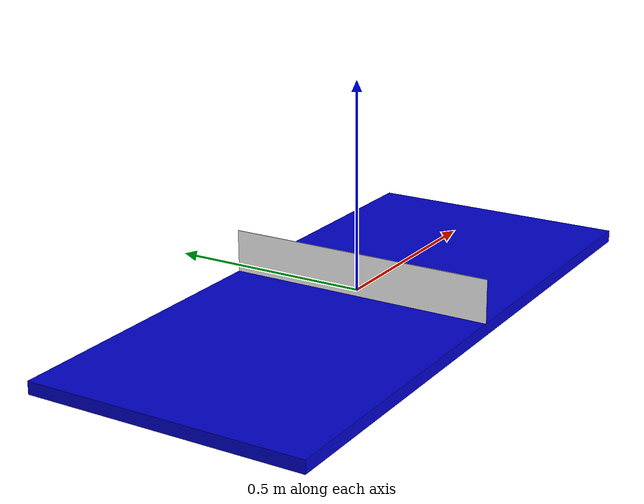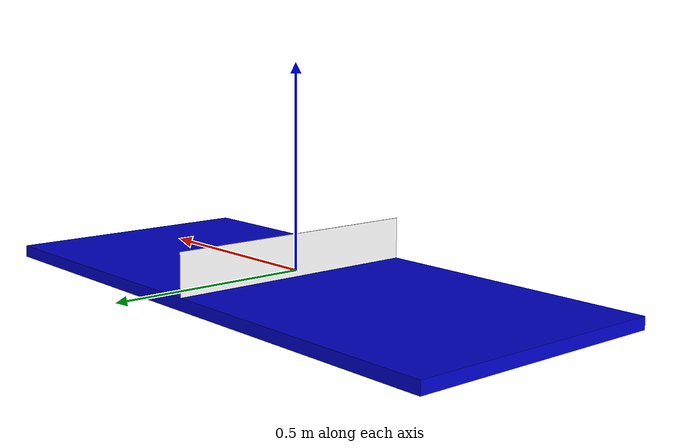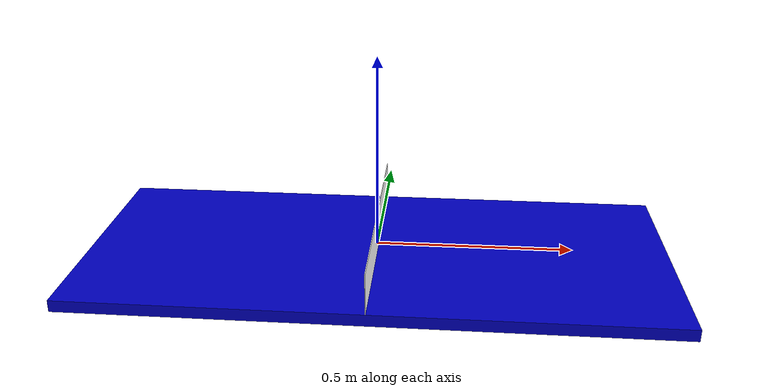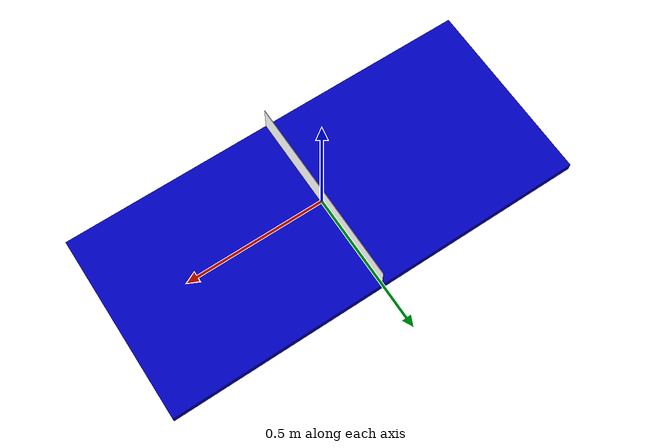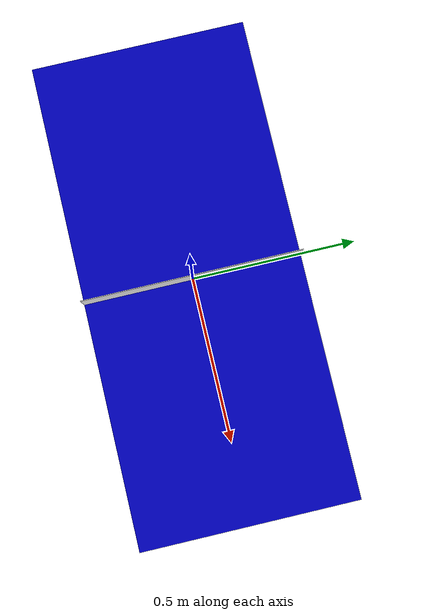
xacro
<?xml version="1.0"?>
<robot name="paddle" xmlns:xacro="http://www.ros.org/wiki/xacro">

  <link name="world"/>

  <material name="blue">
    <color rgba="0 0 0.8 1"/>
  </material>

  <material name="white">
    <color rgba="1.0 1.0 1.0 1"/>
  </material>

  <link name="ping_pong_table">
    <visual name="ping_pong_table_visual">
      <geometry>
        <box size="1.5 0.67 0.03"/>
      </geometry>
      <material name="blue"/>
    </visual>

    <inertial name="ping_pong_table_inertial">
      <mass value="1.0"/>
      <inertia ixx="1.0" ixy="0.0" ixz="0.0" iyy="1.0" iyz="0.0" izz="1.0"/>
    </inertial>

    <collision name="ping_pong_table_collision">
      <geometry>
        <box size="1.5 0.67 0.03"/>
      </geometry>
    </collision>
  </link>

  <link name="net">
    <visual name="net_visual">
      <geometry>
        <box size="0.002 0.67 0.105"/>
      </geometry>
      <material name="white"/>
    </visual>

    <inertial name="net_inertial">
      <mass value="0.02"/>
      <inertia ixx="0.02" ixy="0.0" ixz="0.0" iyy="0.02" iyz="0.0" izz="0.02"/>
    </inertial>

    <collision name="net_collision">
      <geometry>
        <box size="0.002 0.67 0.105"/>
      </geometry>
    </collision>
  </link>

  <joint name="base_joint" type="fixed">
    <parent link="world"/>
    <child link="ping_pong_table"/>
    <origin xyz="0 0 -0.03" rpy="0 0 0"/>
  </joint>

  <joint name="net_joint" type="fixed">
    <parent link="ping_pong_table"/>
    <child link="net"/>
    <origin xyz="0.0 0.0 0.0675" rpy="0 0 0"/>
  </joint>
</robot>
